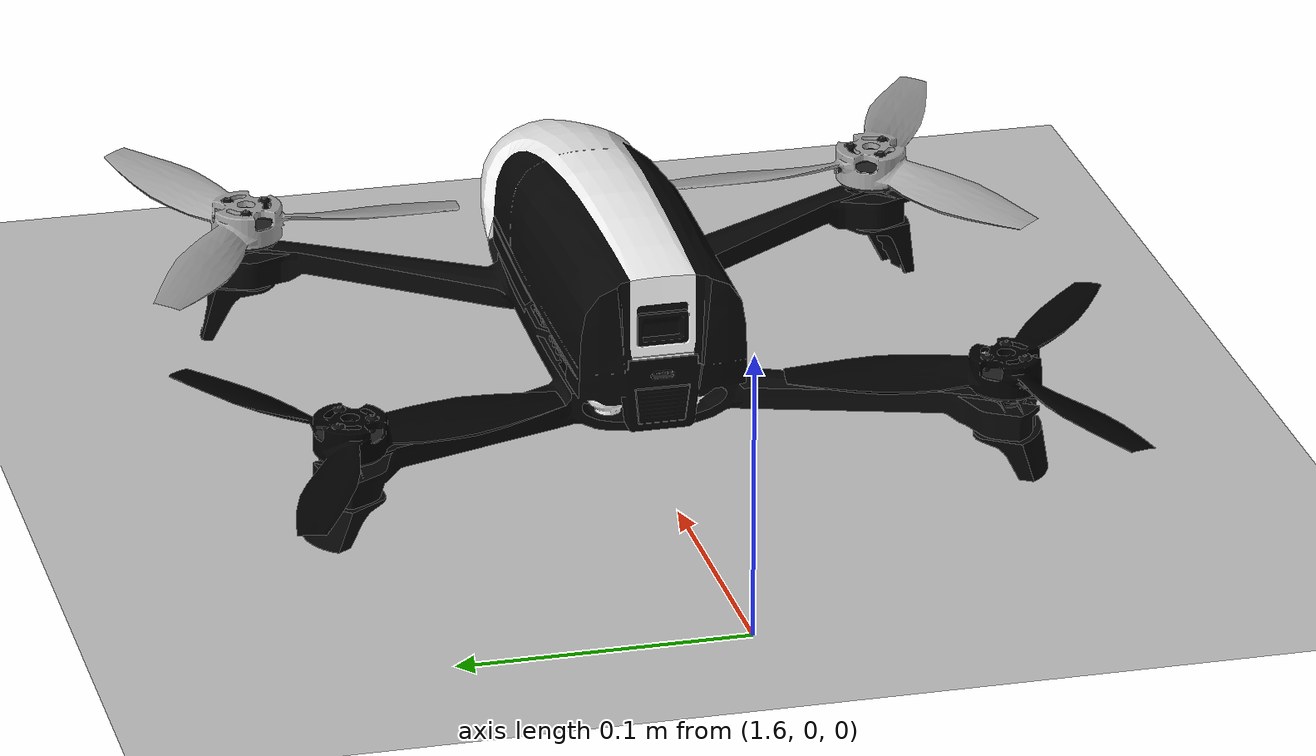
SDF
<sdf version="1.7">
 <world name="default">
  <plugin name="ros_interface_plugin" filename="librotors_gazebo_ros_interface_plugin.so"/>
  <light name="sun" type="directional">
   <pose>0 0 10 0 -0 0</pose>
   <diffuse>0.8 0.8 0.8 1</diffuse>
   <specular>0.1 0.1 0.1 1</specular>
   <attenuation>
    <range>1000</range>
    <constant>0.9</constant>
    <linear>0.01</linear>
    <quadratic>0.001</quadratic>
   </attenuation>
   <direction>-0.5 0.5 -1</direction>
   <spot><inner_angle>0</inner_angle><outer_angle>0</outer_angle><falloff>0</falloff></spot>
  </light>
  <model name="ground_plane">
   <static>1</static>
   <link name="link">
    <collision name="collision">
     <geometry><plane><normal>0 0 1</normal><size>100 100</size></plane></geometry>
     <surface><friction><ode><mu>100</mu><mu2>50</mu2></ode></friction></surface>
    </collision>
    <visual name="visual">
     <cast_shadows>0</cast_shadows>
     <geometry><plane><normal>0 0 1</normal><size>100 100</size></plane></geometry>
     <material>
      <script><uri>file://media/materials/scripts/gazebo.material</uri><name>Gazebo/Grey</name></script>
     </material>
    </visual>
   </link>
  </model>
  <physics type="ode">
   <ode>
    <solver>
     <type>quick</type>
     <iters>50</iters>
     <sor>1.3</sor>
     <use_dynamic_moi_rescaling>0</use_dynamic_moi_rescaling>
    </solver>
    <constraints>
     <cfm>0</cfm>
     <erp>0.2</erp>
     <contact_max_correcting_vel>100</contact_max_correcting_vel>
     <contact_surface_layer>0.001</contact_surface_layer>
    </constraints>
   </ode>
   <max_step_size>0.01</max_step_size>
   <real_time_factor>1</real_time_factor>
   <real_time_update_rate>100</real_time_update_rate>
   <gravity>0 0 -9.8</gravity>
  </physics>
  <atmosphere type="adiabatic"/>
  <scene><ambient>0.4 0.4 0.4 1</ambient><background>0.7 0.7 0.7 1</background><shadows>1</shadows></scene>
  <spherical_coordinates>
   <surface_model>EARTH_WGS84</surface_model>
   <latitude_deg>0</latitude_deg>
   <longitude_deg>0</longitude_deg>
   <elevation>0</elevation>
   <heading_deg>0</heading_deg>
  </spherical_coordinates>
  <gravity>0 0 -9.8</gravity>
  <magnetic_field>6e-06 2.3e-05 -4.2e-05</magnetic_field>
  <model name="bebop2">
   <link name="bebop2/base_link">
    <inertial>
     <pose>2e-06 0 0 0 -0 0</pose>
     <mass>0.50301</mass>
     <inertia>
      <ixx>0.001806</ixx>
      <ixy>-8.619e-07</ixy>
      <ixz>1.555e-05</ixz>
      <iyy>0.0017651</iyy>
      <iyz>3.595e-07</iyz>
      <izz>0.0033291</izz>
     </inertia>
    </inertial>
    <collision name="bebop2/base_link_inertia_collision">
     <geometry><box><size>0.316618 0.316618 0.089582</size></box></geometry>
    </collision>
    <collision name="bebop2/base_link_fixed_joint_lump__bebop2/camera_base_link_collision_1">
     <pose>0.1 0 0 0 -0 0</pose>
     <geometry><box><size>0.001 0.001 0.001</size></box></geometry>
    </collision>
    <visual name="bebop2/base_link_inertia_visual">
     <geometry>
      <mesh>
       <scale>1 1 1</scale>
       <uri>/home/autonomouslab/bebop_ws/src/iROS_drone/rotors_simulator/rotors_description/meshes/bebop2.dae</uri>
      </mesh>
     </geometry>
    </visual>
    <visual name="bebop2/base_link_fixed_joint_lump__bebop2/camera_base_link_visual_1">
     <pose>0.1 0 0 3.14159 1.57079 3.14159</pose>
     <geometry><box><size>0.001 0.001 0.001</size></box></geometry>
    </visual>
    <sensor name="bebop2_camera_base" type="camera">
     <update_rate>30</update_rate>
     <camera name="head">
      <horizontal_fov>1.7</horizontal_fov>
      <image><width>856</width><height>480</height><format>R8G8B8</format></image>
      <clip><near>0.02</near><far>50</far></clip>
      <noise><type>gaussian</type><mean>0</mean><stddev>0.007</stddev></noise>
     </camera>
     <plugin name="bebop2_camera_base_controller" filename="libgazebo_ros_camera.so">
      <robotNamespace>bebop2</robotNamespace>
      <alwaysOn>1</alwaysOn>
      <updateRate>30.0</updateRate>
      <cameraName>camera_base</cameraName>
      <imageTopicName>image_raw</imageTopicName>
      <cameraInfoTopicName>camera_info</cameraInfoTopicName>
      <frameName>camera_base_link</frameName>
      <hackBaseline>0.0</hackBaseline>
      <distortionK1>0.0</distortionK1>
      <distortionK2>0.0</distortionK2>
      <distortionK3>0.0</distortionK3>
      <distortionT1>0.0</distortionT1>
      <distortionT2>0.0</distortionT2>
     </plugin>
     <pose>0.1 0 0 0 -0 0</pose>
    </sensor>
   </link>
   <joint name="bebop2/imu_joint" type="revolute">
    <pose relative_to="bebop2/base_link">0 0 0 0 -0 0</pose>
    <parent>bebop2/base_link</parent>
    <child>bebop2/imu_link</child>
    <axis>
     <xyz>1 0 0</xyz>
     <limit><lower>0</lower><upper>0</upper><effort>0</effort><velocity>0</velocity></limit>
     <dynamics><spring_reference>0</spring_reference><spring_stiffness>0</spring_stiffness></dynamics>
    </axis>
   </joint>
   <link name="bebop2/imu_link">
    <pose relative_to="bebop2/imu_joint">0 0 0 0 -0 0</pose>
    <inertial>
     <mass>0.015</mass>
     <inertia><ixx>1e-05</ixx><ixy>0</ixy><ixz>0</ixz><iyy>1e-05</iyy><iyz>0</iyz><izz>1e-05</izz></inertia>
    </inertial>
   </link>
   <joint name="bebop2/imugt_joint" type="revolute">
    <pose relative_to="bebop2/base_link">0 0 0 0 -0 0</pose>
    <parent>bebop2/base_link</parent>
    <child>bebop2/imugt_link</child>
    <axis>
     <xyz>1 0 0</xyz>
     <limit><lower>0</lower><upper>0</upper><effort>0</effort><velocity>0</velocity></limit>
     <dynamics><spring_reference>0</spring_reference><spring_stiffness>0</spring_stiffness></dynamics>
    </axis>
   </joint>
   <link name="bebop2/imugt_link">
    <pose relative_to="bebop2/imugt_joint">0 0 0 0 -0 0</pose>
    <inertial>
     <mass>1e-05</mass>
     <inertia><ixx>1e-05</ixx><ixy>0</ixy><ixz>0</ixz><iyy>1e-05</iyy><iyz>0</iyz><izz>1e-05</izz></inertia>
    </inertial>
   </link>
   <joint name="bebop2/odometry_sensor1_joint" type="revolute">
    <pose relative_to="bebop2/base_link">0 0 0 0 -0 0</pose>
    <parent>bebop2/base_link</parent>
    <child>bebop2/odometry_sensor1_link</child>
    <axis>
     <xyz>1 0 0</xyz>
     <limit><lower>0</lower><upper>0</upper><effort>0</effort><velocity>0</velocity></limit>
     <dynamics><spring_reference>0</spring_reference><spring_stiffness>0</spring_stiffness></dynamics>
    </axis>
   </joint>
   <link name="bebop2/odometry_sensor1_link">
    <pose relative_to="bebop2/odometry_sensor1_joint">0 0 0 0 -0 0</pose>
    <inertial>
     <mass>1e-05</mass>
     <inertia><ixx>1e-05</ixx><ixy>0</ixy><ixz>0</ixz><iyy>1e-05</iyy><iyz>0</iyz><izz>1e-05</izz></inertia>
    </inertial>
   </link>
   <joint name="bebop2/odometry_sensorgt_joint" type="revolute">
    <pose relative_to="bebop2/base_link">0 0 0 0 -0 0</pose>
    <parent>bebop2/base_link</parent>
    <child>bebop2/odometry_sensorgt_link</child>
    <axis>
     <xyz>1 0 0</xyz>
     <limit><lower>0</lower><upper>0</upper><effort>0</effort><velocity>0</velocity></limit>
     <dynamics><spring_reference>0</spring_reference><spring_stiffness>0</spring_stiffness></dynamics>
    </axis>
   </joint>
   <link name="bebop2/odometry_sensorgt_link">
    <pose relative_to="bebop2/odometry_sensorgt_joint">0 0 0 0 -0 0</pose>
    <inertial>
     <mass>1e-05</mass>
     <inertia><ixx>1e-05</ixx><ixy>0</ixy><ixz>0</ixz><iyy>1e-05</iyy><iyz>0</iyz><izz>1e-05</izz></inertia>
    </inertial>
   </link>
   <joint name="bebop2/rotor_0_joint" type="revolute">
    <pose relative_to="bebop2/base_link">0.08456 -0.11435 -0.00501 0 -0 0</pose>
    <parent>bebop2/base_link</parent>
    <child>bebop2/rotor_0</child>
    <axis>
     <xyz>0 0 1</xyz>
     <limit><lower>-1e+16</lower><upper>1e+16</upper></limit>
     <dynamics><spring_reference>0</spring_reference><spring_stiffness>0</spring_stiffness></dynamics>
    </axis>
   </joint>
   <link name="bebop2/rotor_0">
    <pose relative_to="bebop2/rotor_0_joint">0 0 0 0 -0 0</pose>
    <inertial>
     <mass>0.001</mass>
     <inertia>
      <ixx>1.95e-07</ixx>
      <ixy>0</ixy>
      <ixz>0</ixz>
      <iyy>8.34083e-06</iyy>
      <iyz>0</iyz>
      <izz>8.52083e-06</izz>
     </inertia>
    </inertial>
    <collision name="bebop2/rotor_0_collision">
     <geometry><cylinder><length>0.005</length><radius>0.1</radius></cylinder></geometry>
    </collision>
    <visual name="bebop2/rotor_0_visual">
     <geometry>
      <mesh>
       <scale>1 1 1</scale>
       <uri>/home/autonomouslab/bebop_ws/src/iROS_drone/rotors_simulator/rotors_description/meshes/propeller_fr.dae</uri>
      </mesh>
     </geometry>
     <material>
      <script><name>Gazebo/</name><uri>file://media/materials/scripts/gazebo.material</uri></script>
     </material>
    </visual>
   </link>
   <joint name="bebop2/rotor_1_joint" type="revolute">
    <pose relative_to="bebop2/base_link">-0.09035 0.11452 -0.00501 0 -0 0</pose>
    <parent>bebop2/base_link</parent>
    <child>bebop2/rotor_1</child>
    <axis>
     <xyz>0 0 1</xyz>
     <limit><lower>-1e+16</lower><upper>1e+16</upper></limit>
     <dynamics><spring_reference>0</spring_reference><spring_stiffness>0</spring_stiffness></dynamics>
    </axis>
   </joint>
   <link name="bebop2/rotor_1">
    <pose relative_to="bebop2/rotor_1_joint">0 0 0 0 -0 0</pose>
    <inertial>
     <mass>0.001</mass>
     <inertia>
      <ixx>1.95e-07</ixx>
      <ixy>0</ixy>
      <ixz>0</ixz>
      <iyy>8.34083e-06</iyy>
      <iyz>0</iyz>
      <izz>8.52083e-06</izz>
     </inertia>
    </inertial>
    <collision name="bebop2/rotor_1_collision">
     <geometry><cylinder><length>0.005</length><radius>0.1</radius></cylinder></geometry>
    </collision>
    <visual name="bebop2/rotor_1_visual">
     <geometry>
      <mesh>
       <scale>1 1 1</scale>
       <uri>/home/autonomouslab/bebop_ws/src/iROS_drone/rotors_simulator/rotors_description/meshes/propeller_rl.dae</uri>
      </mesh>
     </geometry>
     <material>
      <script><name>Gazebo/</name><uri>file://media/materials/scripts/gazebo.material</uri></script>
     </material>
    </visual>
   </link>
   <joint name="bebop2/rotor_2_joint" type="revolute">
    <pose relative_to="bebop2/base_link">0.08456 0.11463 -0.00501 0 -0 0</pose>
    <parent>bebop2/base_link</parent>
    <child>bebop2/rotor_2</child>
    <axis>
     <xyz>0 0 1</xyz>
     <limit><lower>-1e+16</lower><upper>1e+16</upper></limit>
     <dynamics><spring_reference>0</spring_reference><spring_stiffness>0</spring_stiffness></dynamics>
    </axis>
   </joint>
   <link name="bebop2/rotor_2">
    <pose relative_to="bebop2/rotor_2_joint">0 0 0 0 -0 0</pose>
    <inertial>
     <mass>0.001</mass>
     <inertia>
      <ixx>1.95e-07</ixx>
      <ixy>0</ixy>
      <ixz>0</ixz>
      <iyy>8.34083e-06</iyy>
      <iyz>0</iyz>
      <izz>8.52083e-06</izz>
     </inertia>
    </inertial>
    <collision name="bebop2/rotor_2_collision">
     <geometry><cylinder><length>0.005</length><radius>0.1</radius></cylinder></geometry>
    </collision>
    <visual name="bebop2/rotor_2_visual">
     <geometry>
      <mesh>
       <scale>1 1 1</scale>
       <uri>/home/autonomouslab/bebop_ws/src/iROS_drone/rotors_simulator/rotors_description/meshes/propeller_fl.dae</uri>
      </mesh>
     </geometry>
     <material>
      <script><name>Gazebo/</name><uri>file://media/materials/scripts/gazebo.material</uri></script>
     </material>
    </visual>
   </link>
   <joint name="bebop2/rotor_3_joint" type="revolute">
    <pose relative_to="bebop2/base_link">-0.09035 -0.11423 -0.00501 0 -0 0</pose>
    <parent>bebop2/base_link</parent>
    <child>bebop2/rotor_3</child>
    <axis>
     <xyz>0 0 1</xyz>
     <limit><lower>-1e+16</lower><upper>1e+16</upper></limit>
     <dynamics><spring_reference>0</spring_reference><spring_stiffness>0</spring_stiffness></dynamics>
    </axis>
   </joint>
   <link name="bebop2/rotor_3">
    <pose relative_to="bebop2/rotor_3_joint">0 0 0 0 -0 0</pose>
    <inertial>
     <mass>0.001</mass>
     <inertia>
      <ixx>1.95e-07</ixx>
      <ixy>0</ixy>
      <ixz>0</ixz>
      <iyy>8.34083e-06</iyy>
      <iyz>0</iyz>
      <izz>8.52083e-06</izz>
     </inertia>
    </inertial>
    <collision name="bebop2/rotor_3_collision">
     <geometry><cylinder><length>0.005</length><radius>0.1</radius></cylinder></geometry>
    </collision>
    <visual name="bebop2/rotor_3_visual">
     <geometry>
      <mesh>
       <scale>1 1 1</scale>
       <uri>/home/autonomouslab/bebop_ws/src/iROS_drone/rotors_simulator/rotors_description/meshes/propeller_rr.dae</uri>
      </mesh>
     </geometry>
     <material>
      <script><name>Gazebo/</name><uri>file://media/materials/scripts/gazebo.material</uri></script>
     </material>
    </visual>
   </link>
   <plugin name="multirotor_base_plugin" filename="librotors_gazebo_multirotor_base_plugin.so">
    <robotNamespace>bebop2</robotNamespace>
    <linkName>bebop2/base_link</linkName>
    <rotorVelocitySlowdownSim>10</rotorVelocitySlowdownSim>
   </plugin>
   <plugin name="bebop2_front_right_motor_model" filename="librotors_gazebo_motor_model.so">
    <robotNamespace>bebop2</robotNamespace>
    <jointName>bebop2/rotor_0_joint</jointName>
    <linkName>bebop2/rotor_0</linkName>
    <turningDirection>ccw</turningDirection>
    <timeConstantUp>0.0125</timeConstantUp>
    <timeConstantDown>0.025</timeConstantDown>
    <maxRotVelocity>838</maxRotVelocity>
    <motorConstant>8.54858e-06</motorConstant>
    <momentConstant>0.016</momentConstant>
    <commandSubTopic>gazebo/command/motor_speed</commandSubTopic>
    <motorNumber>0</motorNumber>
    <rotorDragCoefficient>8.06428e-05</rotorDragCoefficient>
    <rollingMomentCoefficient>1e-06</rollingMomentCoefficient>
    <motorSpeedPubTopic>motor_speed/0</motorSpeedPubTopic>
    <rotorVelocitySlowdownSim>10</rotorVelocitySlowdownSim>
   </plugin>
   <plugin name="bebop2_back_left_motor_model" filename="librotors_gazebo_motor_model.so">
    <robotNamespace>bebop2</robotNamespace>
    <jointName>bebop2/rotor_1_joint</jointName>
    <linkName>bebop2/rotor_1</linkName>
    <turningDirection>ccw</turningDirection>
    <timeConstantUp>0.0125</timeConstantUp>
    <timeConstantDown>0.025</timeConstantDown>
    <maxRotVelocity>838</maxRotVelocity>
    <motorConstant>8.54858e-06</motorConstant>
    <momentConstant>0.016</momentConstant>
    <commandSubTopic>gazebo/command/motor_speed</commandSubTopic>
    <motorNumber>1</motorNumber>
    <rotorDragCoefficient>8.06428e-05</rotorDragCoefficient>
    <rollingMomentCoefficient>1e-06</rollingMomentCoefficient>
    <motorSpeedPubTopic>motor_speed/1</motorSpeedPubTopic>
    <rotorVelocitySlowdownSim>10</rotorVelocitySlowdownSim>
   </plugin>
   <plugin name="bebop2_front_left_motor_model" filename="librotors_gazebo_motor_model.so">
    <robotNamespace>bebop2</robotNamespace>
    <jointName>bebop2/rotor_2_joint</jointName>
    <linkName>bebop2/rotor_2</linkName>
    <turningDirection>cw</turningDirection>
    <timeConstantUp>0.0125</timeConstantUp>
    <timeConstantDown>0.025</timeConstantDown>
    <maxRotVelocity>838</maxRotVelocity>
    <motorConstant>8.54858e-06</motorConstant>
    <momentConstant>0.016</momentConstant>
    <commandSubTopic>gazebo/command/motor_speed</commandSubTopic>
    <motorNumber>2</motorNumber>
    <rotorDragCoefficient>8.06428e-05</rotorDragCoefficient>
    <rollingMomentCoefficient>1e-06</rollingMomentCoefficient>
    <motorSpeedPubTopic>motor_speed/2</motorSpeedPubTopic>
    <rotorVelocitySlowdownSim>10</rotorVelocitySlowdownSim>
   </plugin>
   <plugin name="bebop2_back_right_motor_model" filename="librotors_gazebo_motor_model.so">
    <robotNamespace>bebop2</robotNamespace>
    <jointName>bebop2/rotor_3_joint</jointName>
    <linkName>bebop2/rotor_3</linkName>
    <turningDirection>cw</turningDirection>
    <timeConstantUp>0.0125</timeConstantUp>
    <timeConstantDown>0.025</timeConstantDown>
    <maxRotVelocity>838</maxRotVelocity>
    <motorConstant>8.54858e-06</motorConstant>
    <momentConstant>0.016</momentConstant>
    <commandSubTopic>gazebo/command/motor_speed</commandSubTopic>
    <motorNumber>3</motorNumber>
    <rotorDragCoefficient>8.06428e-05</rotorDragCoefficient>
    <rollingMomentCoefficient>1e-06</rollingMomentCoefficient>
    <motorSpeedPubTopic>motor_speed/3</motorSpeedPubTopic>
    <rotorVelocitySlowdownSim>10</rotorVelocitySlowdownSim>
   </plugin>
   <plugin name="controller_interface" filename="librotors_gazebo_controller_interface.so">
    <robotNamespace>bebop2</robotNamespace>
    <commandAttitudeThrustSubTopic>command/attitude</commandAttitudeThrustSubTopic>
    <commandRateThrustSubTopic>command/rate</commandRateThrustSubTopic>
    <commandMotorSpeedSubTopic>command/motor_speed</commandMotorSpeedSubTopic>
    <imuSubTopic>imu</imuSubTopic>
    <motorSpeedCommandPubTopic>gazebo/command/motor_speed</motorSpeedCommandPubTopic>
   </plugin>
   <plugin name="rotors_gazebo_imu_plugin" filename="librotors_gazebo_imu_plugin.so">
    <robotNamespace>bebop2</robotNamespace>
    <linkName>bebop2/imu_link</linkName>
    <imuTopic>imu</imuTopic>
    <gyroscopeNoiseDensity>0.0003394</gyroscopeNoiseDensity>
    <gyroscopeRandomWalk>3.8785e-05</gyroscopeRandomWalk>
    <gyroscopeBiasCorrelationTime>1000.0</gyroscopeBiasCorrelationTime>
    <gyroscopeTurnOnBiasSigma>0.0087</gyroscopeTurnOnBiasSigma>
    <accelerometerNoiseDensity>0.004</accelerometerNoiseDensity>
    <accelerometerRandomWalk>0.006</accelerometerRandomWalk>
    <accelerometerBiasCorrelationTime>300.0</accelerometerBiasCorrelationTime>
    <accelerometerTurnOnBiasSigma>0.196</accelerometerTurnOnBiasSigma>
   </plugin>
   <plugin name="rotors_gazebo_imugt_plugin" filename="librotors_gazebo_imu_plugin.so">
    <robotNamespace>bebop2</robotNamespace>
    <linkName>bebop2/imugt_link</linkName>
    <imuTopic>ground_truth/imu</imuTopic>
    <gyroscopeNoiseDensity>0.0</gyroscopeNoiseDensity>
    <gyroscopeRandomWalk>0.0</gyroscopeRandomWalk>
    <gyroscopeBiasCorrelationTime>1000.0</gyroscopeBiasCorrelationTime>
    <gyroscopeTurnOnBiasSigma>0.0</gyroscopeTurnOnBiasSigma>
    <accelerometerNoiseDensity>0.0</accelerometerNoiseDensity>
    <accelerometerRandomWalk>0.0</accelerometerRandomWalk>
    <accelerometerBiasCorrelationTime>300.0</accelerometerBiasCorrelationTime>
    <accelerometerTurnOnBiasSigma>0.0</accelerometerTurnOnBiasSigma>
   </plugin>
   <plugin name="odometry_sensorgt" filename="librotors_gazebo_odometry_plugin.so">
    <linkName>bebop2/odometry_sensorgt_link</linkName>
    <robotNamespace>bebop2</robotNamespace>
    <poseTopic>ground_truth/pose</poseTopic>
    <poseWithCovarianceTopic>ground_truth/pose_with_covariance</poseWithCovarianceTopic>
    <positionTopic>ground_truth/position</positionTopic>
    <transformTopic>ground_truth/transform</transformTopic>
    <odometryTopic>ground_truth/odometry</odometryTopic>
    <parentFrameId>world</parentFrameId>
    <childFrameId>bebop2/base_link</childFrameId>
    <measurementDivisor>1</measurementDivisor>
    <measurementDelay>0</measurementDelay>
    <unknownDelay>0.0</unknownDelay>
    <noiseNormalPosition>0 0 0</noiseNormalPosition>
    <noiseNormalQuaternion>0 0 0</noiseNormalQuaternion>
    <noiseNormalLinearVelocity>0 0 0</noiseNormalLinearVelocity>
    <noiseNormalAngularVelocity>0 0 0</noiseNormalAngularVelocity>
    <noiseUniformPosition>0 0 0</noiseUniformPosition>
    <noiseUniformQuaternion>0 0 0</noiseUniformQuaternion>
    <noiseUniformLinearVelocity>0 0 0</noiseUniformLinearVelocity>
    <noiseUniformAngularVelocity>0 0 0</noiseUniformAngularVelocity>
   </plugin>
   <static>0</static>
   <plugin name="odometry_sensor1" filename="librotors_gazebo_odometry_plugin.so">
    <linkName>bebop2/odometry_sensor1_link</linkName>
    <robotNamespace>bebop2</robotNamespace>
    <poseTopic>odometry_sensor1/pose</poseTopic>
    <poseWithCovarianceTopic>odometry_sensor1/pose_with_covariance</poseWithCovarianceTopic>
    <positionTopic>odometry_sensor1/position</positionTopic>
    <transformTopic>odometry_sensor1/transform</transformTopic>
    <odometryTopic>odometry_sensor1/odometry</odometryTopic>
    <parentFrameId>world</parentFrameId>
    <childFrameId>bebop2/odometry_sensor1</childFrameId>
    <measurementDivisor>1</measurementDivisor>
    <measurementDelay>0</measurementDelay>
    <unknownDelay>0.0</unknownDelay>
    <noiseNormalPosition>0 0 0</noiseNormalPosition>
    <noiseNormalQuaternion>0 0 0</noiseNormalQuaternion>
    <noiseNormalLinearVelocity>0 0 0</noiseNormalLinearVelocity>
    <noiseNormalAngularVelocity>0 0 0</noiseNormalAngularVelocity>
    <noiseUniformPosition>0 0 0</noiseUniformPosition>
    <noiseUniformQuaternion>0 0 0</noiseUniformQuaternion>
    <noiseUniformLinearVelocity>0 0 0</noiseUniformLinearVelocity>
    <noiseUniformAngularVelocity>0 0 0</noiseUniformAngularVelocity>
   </plugin>
   <pose>1.79916 -0.003019 0.038714 0 -0.039043 0.000559</pose>
  </model>
 </world>
</sdf>
